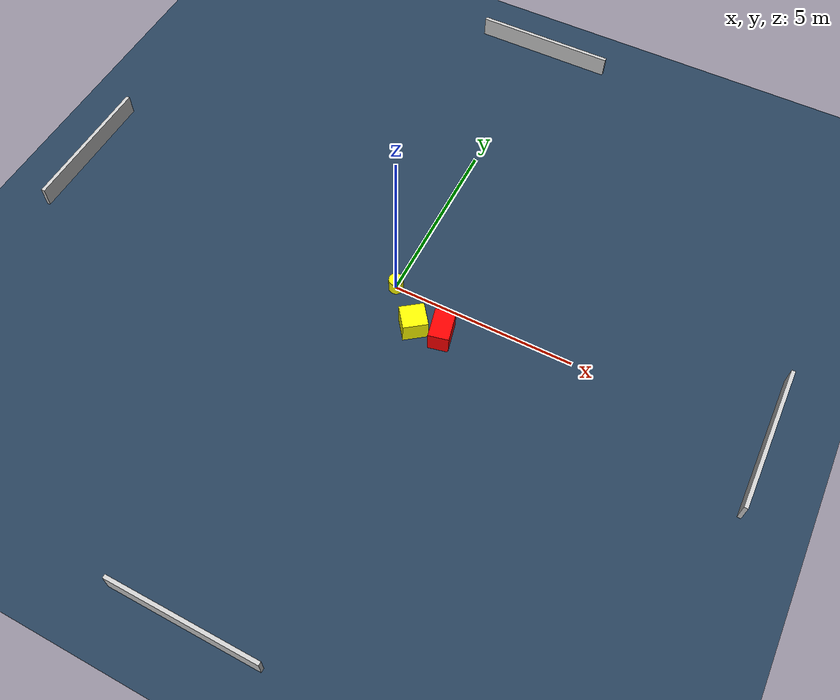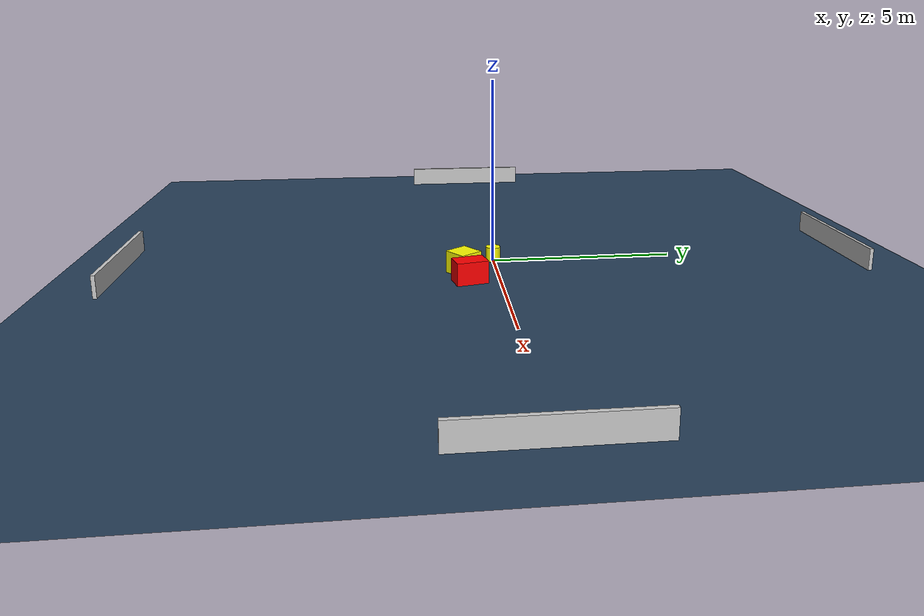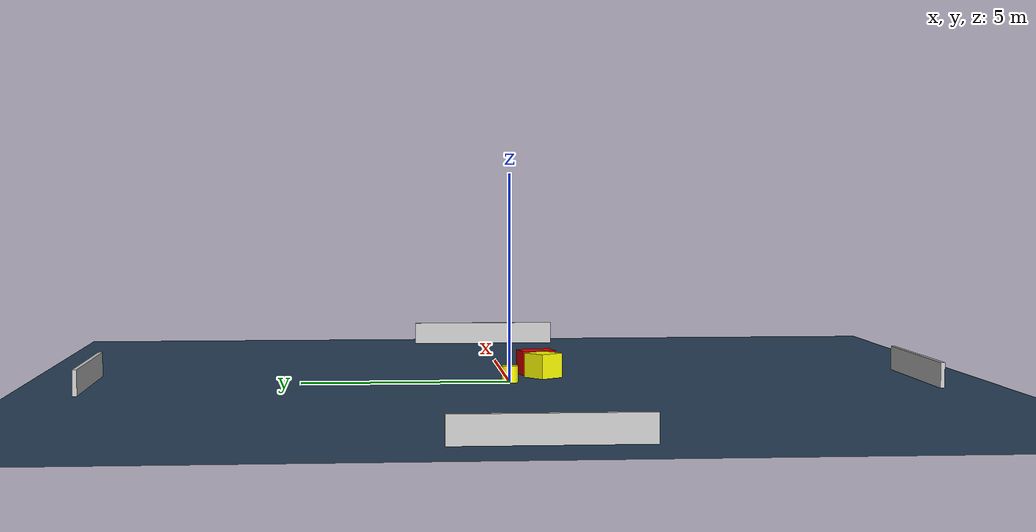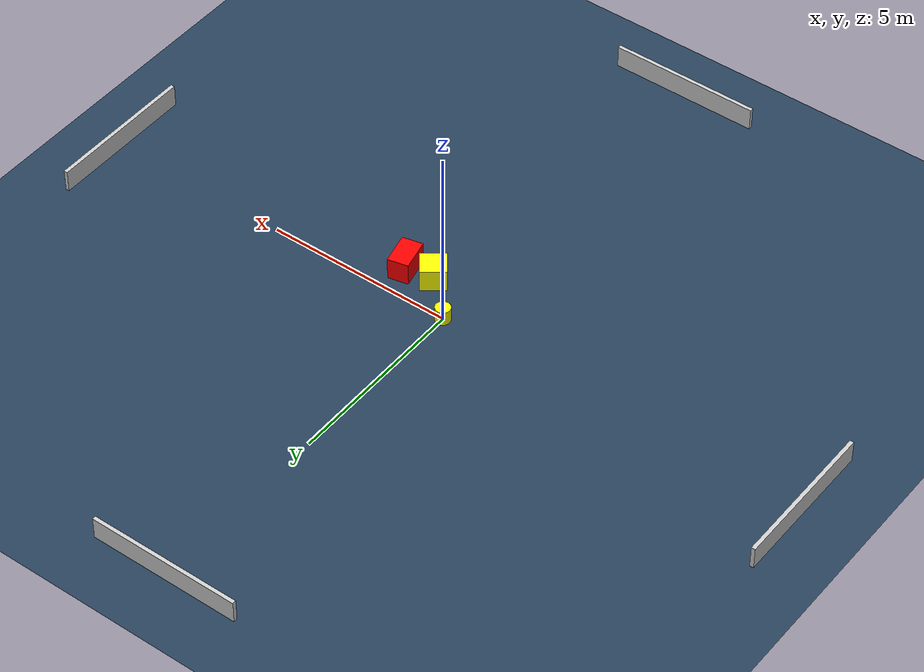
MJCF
<?xml version="1.0" ?>
<mujoco model="generated_environment">
  <option timestep="0.01" integrator="RK4" cone="elliptic"/>
  <default>
    <geom density="1"/>
  </default>
  <asset>
    <texture builtin="gradient" height="3072" name="skybox" rgb1="0.3 0.5 0.7" rgb2="0 0 0" type="skybox" width="512"/>
    <texture builtin="checker" height="300" name="groundplane" rgb1="0.2 0.3 0.4" rgb2="0.1 0.2 0.3" type="2d" width="300"/>
    <material name="groundplane" reflectance="0.2" texrepeat="5 5" texture="groundplane"/>
  </asset>
  <worldbody>
    <light dir="0 0 -1" directional="true" pos="0 0 1.5"/>
    <geom condim="3" friction="0.5 0.005 0.001" material="groundplane" name="floor" pos="0 0 0" size="0 0 0.05" type="plane"/>
    <body name="walls">
      <geom name="wall_1" condim="4" pos="-10.0 0.0 0.3" rgba="0.800000011920929 0.800000011920929 0.800000011920929 1.0" size="0.05 2.0 0.3" type="box"/>
      <geom name="wall_2" condim="4" pos="10.0 0.0 0.3" rgba="0.800000011920929 0.800000011920929 0.800000011920929 1.0" size="0.05 2.0 0.3" type="box"/>
      <geom name="wall_3" condim="4" pos="0.0 -10.0 0.3" rgba="0.800000011920929 0.800000011920929 0.800000011920929 1.0" size="2.0 0.05 0.3" type="box"/>
      <geom name="wall_4" condim="4" pos="0.0 10.0 0.3" rgba="0.800000011920929 0.800000011920929 0.800000011920929 1.0" size="2.0 0.05 0.3" type="box"/>
    </body>
    <body name="robot">
      <joint name="joint_x" type="slide" pos="0 0 0" axis="1 0 0"/>
      <joint name="joint_y" type="slide" pos="0 0 0" axis="0 1 0"/>
      <geom name="robot" type="cylinder" pos="0.0 0.0 0.2" size="0.2 0.2 0.0" mass="5.0" friction="1.0 0.005 0.0001" condim="4" rgba="1.0 1.0 0.0 1.0"/>
    </body>
    <body name="obstacle_1_movable">
      <geom name="obstacle_1_movable" condim="4" pos="0.965358497852308 -0.8954922686170732 0.3" euler="0 0 126.94760977264463" friction="0.0 0.005 0.001" rgba="1.0 1.0 0.0 1.0" size="0.32580574958259223 0.3342225404990722 0.3" type="box" mass="0.1"/>
      <joint type="free"/>
    </body>
    <body name="obstacle_2_static">
      <geom name="obstacle_2_static" condim="4" pos="1.7249210197175897 -0.7904168242091609 0.3" euler="0 0 192.6781289025461" friction="0.0 0.005 0.001" rgba="1.0 0.0 0.0 1.0" size="0.2747433122461667 0.4209016665597186 0.3" type="box"/>
    </body>
  </worldbody>
  <actuator>
    <motor name="actuator_x" joint="joint_x" gear="1" ctrlrange="-1 1"/>
    <motor name="actuator_y" joint="joint_y" gear="1" ctrlrange="-1 1"/>
  </actuator>
</mujoco>
